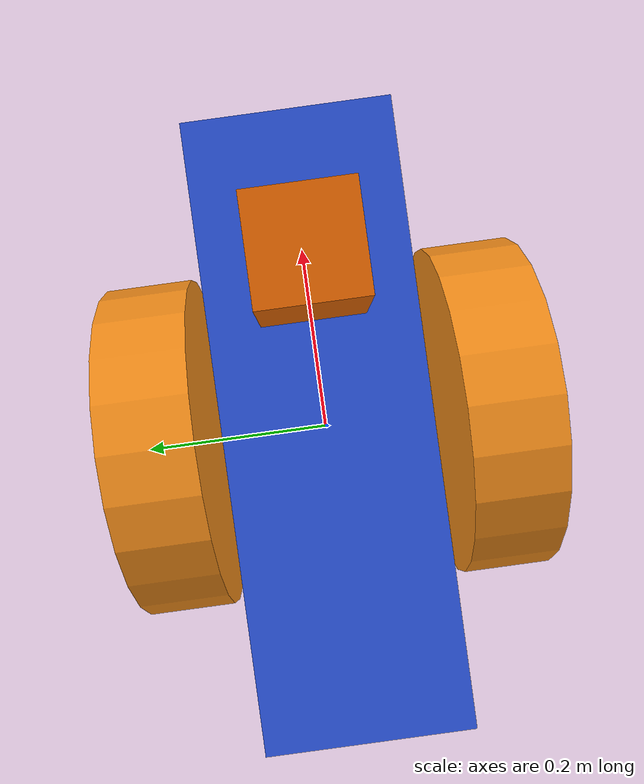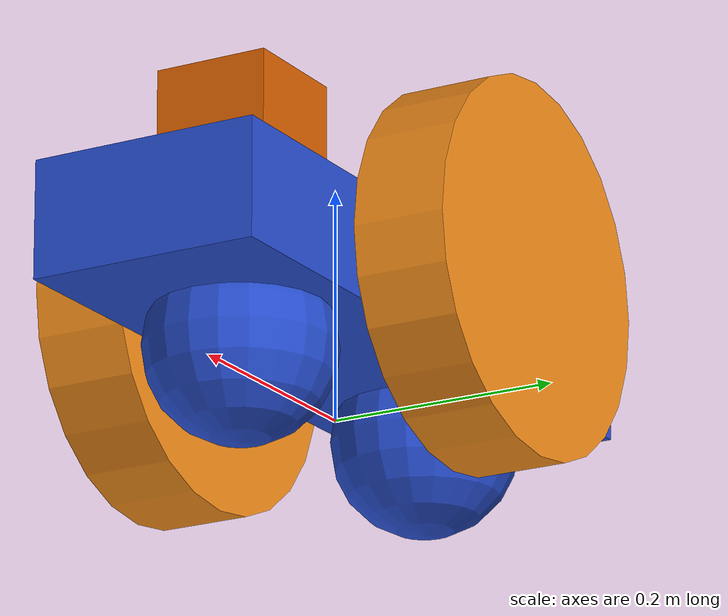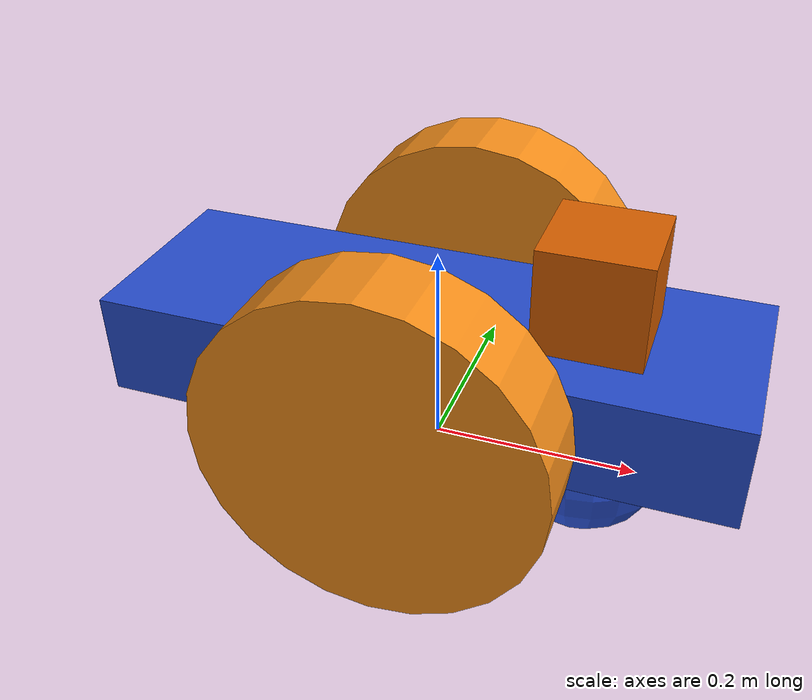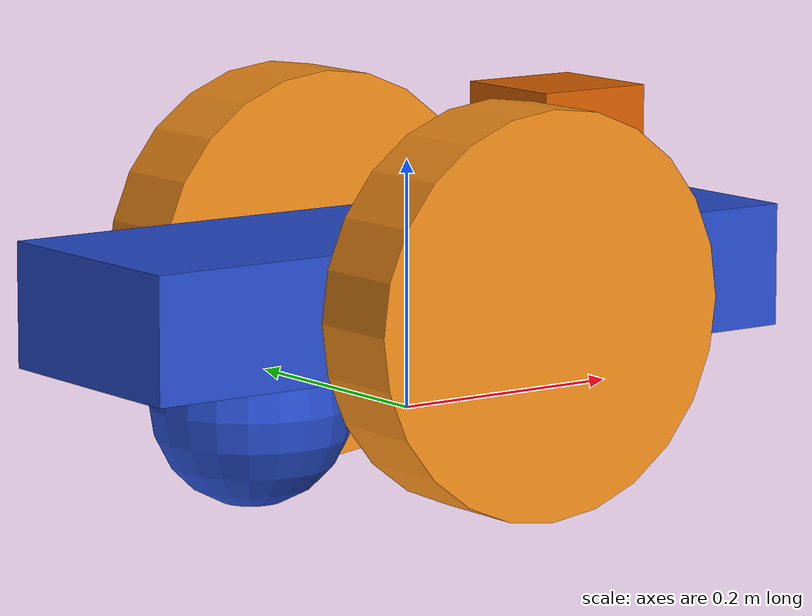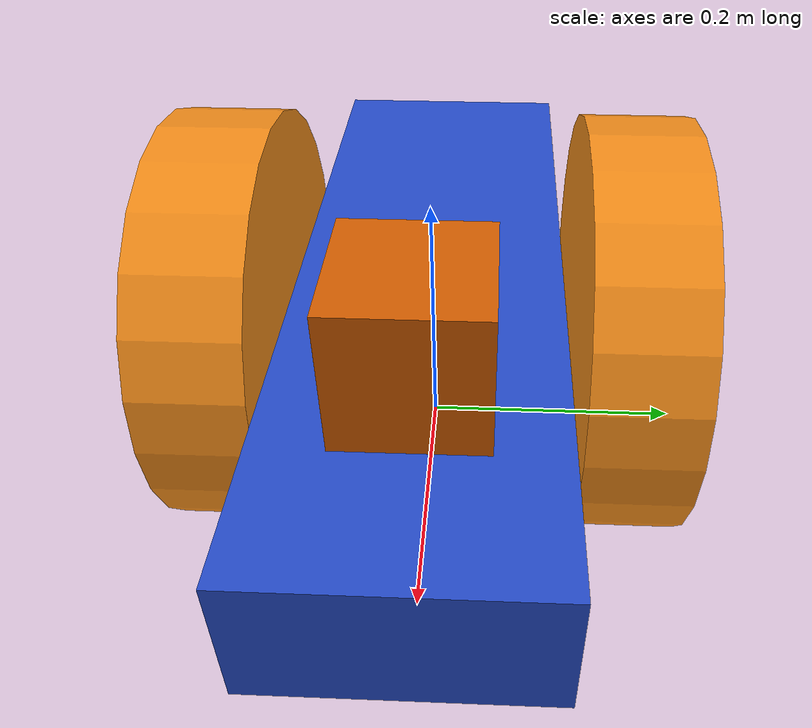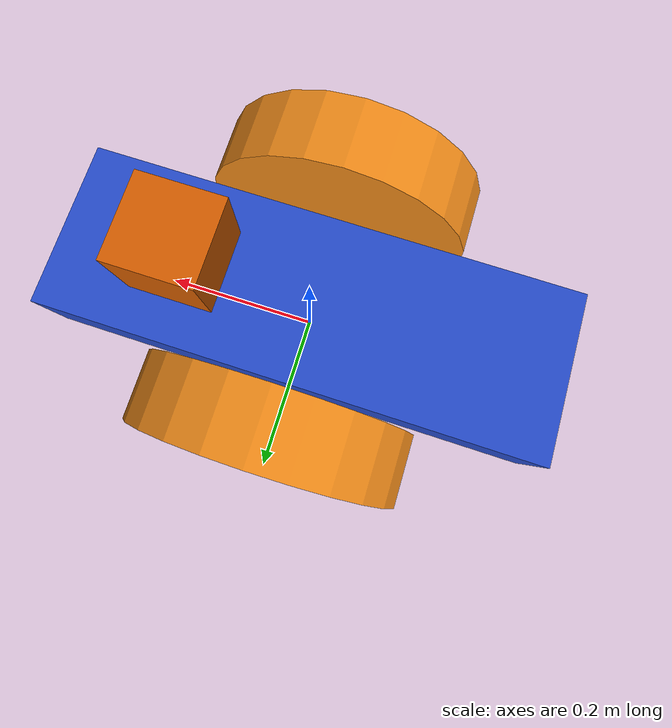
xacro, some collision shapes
<?xml version='1.0'?>

<robot name="my_robot" xmlns:xacro="http://www.ros.org/wiki/xacro">

<xacro:include filename="$(find my_robot)/urdf/my_robot.gazebo" />

  <link name="left_wheel">
    <visual name="left_wheel_visual">
      <origin xyz="0 0 0" rpy="0 1.5707 1.5707"/>
      <geometry>
        <cylinder radius="0.16" length="0.08"/>
      </geometry>
    </visual>

    <collision name='left_collision'>
      <origin xyz="0 0 0" rpy="0 1.5707 1.5707"/>
      <geometry>
        <cylinder radius="0.16" length="0.08"/>
      </geometry>
    </collision>

    <inertial>
      <mass value="5.0"/>
      <origin xyz="0.0 0 0" rpy="0.0 1.5707 1.5707"/>
        <inertia
          ixx="0.1" ixy="0" ixz="0"
          iyy="0.1" iyz="0"
          izz="0.1"
      />
    </inertial>

   </link>

  <joint type="continuous"  name="left_wheel_hinge">
    <origin xyz="0 0.15 0" rpy="0 0 0" />
      <child link="left_wheel"/>
    <parent link="chassis"/>
    <axis xyz="0 1 0" rpy="0 0 0"/>
    <limit effort="10000" velocity="1000"/>
    <dynamics damping="1.0" friction="1.0"/>
   </joint>

<link name="right_wheel">

 <inertial>
      <mass value="5.0"/>
      <origin xyz="0 0 0" rpy="0 1.5707 1.5707"/>
        <inertia
          ixx="0.1" ixy="0" ixz="0"
          iyy="0.1" iyz="0"
          izz="0.1"
      />
    </inertial>

    <visual name="right_wheel_visual">
      <origin xyz="0 0 0" rpy="0 1.5707 1.5707"/>
      <geometry>
        <cylinder radius="0.16" length="0.08"/>
      </geometry>
    </visual>

    <collision name='right_collision'>
      <origin xyz="0 0 0" rpy="0 1.5707 1.5707"/>
      <geometry>
        <cylinder radius="0.16" length="0.08"/>
      </geometry>
    </collision>
  </link>

  <joint type="continuous" name="right_wheel_hinge">
    <origin xyz="0 -0.15 0" rpy="0 0 0" />
      <child link="right_wheel"/>
  <parent link="chassis"/>
    <axis xyz="0 1 0" rpy="0 0 0"/>
    <limit effort="10000" velocity="1000"/>
    <dynamics damping="1.0" friction="1.0"/>
  </joint>

  <link name="robot_footprint"></link>

  <joint name="robot_footprint_joint" type="fixed">
    <origin xyz="0 0 0.1" rpy="0 0 0" />
    <parent link="robot_footprint"/>
    <child link="chassis" />
  </joint>

  <link name='chassis'>
    <pose>0 0 0.1 0 0 0</pose>

    <inertial>
      <mass value="10.0"/>
      <origin xyz="0.0 0 0" rpy=" 0 0 0"/>
      <inertia
          ixx="0.1" ixy="0" ixz="0"
          iyy="0.1" iyz="0"
          izz="0.1"
      />
    </inertial>

    <collision name='collision'>
      <origin xyz="0 0 0" rpy=" 0 0 0"/>
      <geometry>
        <box size=".6 .2 .1"/>
      </geometry>
    </collision>

    <visual name='chassis_visual'>
      <origin xyz="0 0 0" rpy=" 0 0 0"/>
      <geometry>
        <box size=".6 .2 .1"/>
      </geometry>
    </visual>

    <collision name='back_caster_collision'>
      <origin xyz="-0.15 0 -0.08" rpy=" 0 0 0"/>
      <geometry>
        <sphere radius="0.0799"/>
      </geometry>
    </collision>

    <visual name='back_caster_visual'>
      <origin xyz="-0.15 0 -0.08" rpy=" 0 0 0"/>
      <geometry>
        <sphere radius="0.08"/>
      </geometry>
    </visual>

    <collision name='front_caster_collision'>
      <origin xyz="0.15 0 -0.08" rpy=" 0 0 0"/>
      <geometry>
        <sphere radius="0.0799"/>
      </geometry>
    </collision>

    <visual name='front_caster_visual'>
      <origin xyz="0.15 0 -0.08" rpy=" 0 0 0"/>
      <geometry>
        <sphere radius="0.08"/>
      </geometry>
    </visual>

  </link>

<link name="camera">
    <visual name="camera_visual">
      <origin xyz="0 0 0" rpy="0 0 0"/>
      <geometry>
        <box size=".05 .05 .05"/>
      </geometry>
    </visual>

    <collision name='camera_collision'>
      <origin xyz="0 0 0" rpy="0 0 0"/>
      <geometry>
        <box size=".05 .05 .05"/>
      </geometry>
    </collision>

    <inertial name='box_inertia'>
      <mass value="0.1"/>
      <origin xyz="0.0 0 0" rpy="0 0 0"/>
        <inertia
          ixx="1e-6" ixy="0" ixz="0"
          iyy="1e-6" iyz="0"
          izz="1e-6"
      />
    </inertial>

   </link>

  <joint type="fixed"  name="camera_joint">
    <origin xyz="0.2 0 0" rpy="0 0 0" />
      <child link="camera"/>
    <parent link="chassis"/>
    <axis xyz="0 1 0" rpy="0 0 0"/>
   </joint>

<link name="hokuyo">
    <visual name="lidar_visual">
      <origin xyz="0 0 0" rpy="0 0 0"/>
      <geometry>
        <mesh filename="package://my_robot/meshes/hokuyo.dae"/>
      </geometry>
    </visual>

    <collision name='lidar_collision'>
      <origin xyz="0 0 0" rpy="0 0 0"/>
      <geometry>
        <box size=".1 .1 .1"/>
      </geometry>
    </collision>

    <inertial name='lidar_inertia'>
      <mass value="1e-5"/>
      <origin xyz="0.0 0 0" rpy="0 0 0"/>
        <inertia
          ixx="1e-6" ixy="0" ixz="0"
          iyy="1e-6" iyz="0"
          izz="1e-6"
      />
    </inertial>

   </link>

  <joint type="fixed"  name="hokuyo_joint">
    <origin xyz="0.15 0 0.1" rpy="0 0 0" />
      <child link="hokuyo"/>
    <parent link="chassis"/>
    <axis xyz="0 1 0" rpy="0 0 0"/>
   </joint>

<gazebo reference="left_wheel">
    <material>Gazebo/Orange</material>
</gazebo>

<gazebo reference="right_wheel">
    <material>Gazebo/Orange</material>
</gazebo>

<gazebo reference="chassis">
    <material>Gazebo/Blue</material>
</gazebo>

<gazebo reference="camera">
    <material>Gazebo/Red</material>
</gazebo>

<joint name="camera_optical_joint" type="fixed">
    <origin xyz="0 0 0" rpy="-1.5707 0 -1.5707"/>
    <parent link="camera"/>
    <child link="camera_link_optical"/>
  </joint>

  <link name="camera_link_optical">
  </link>

</robot>
